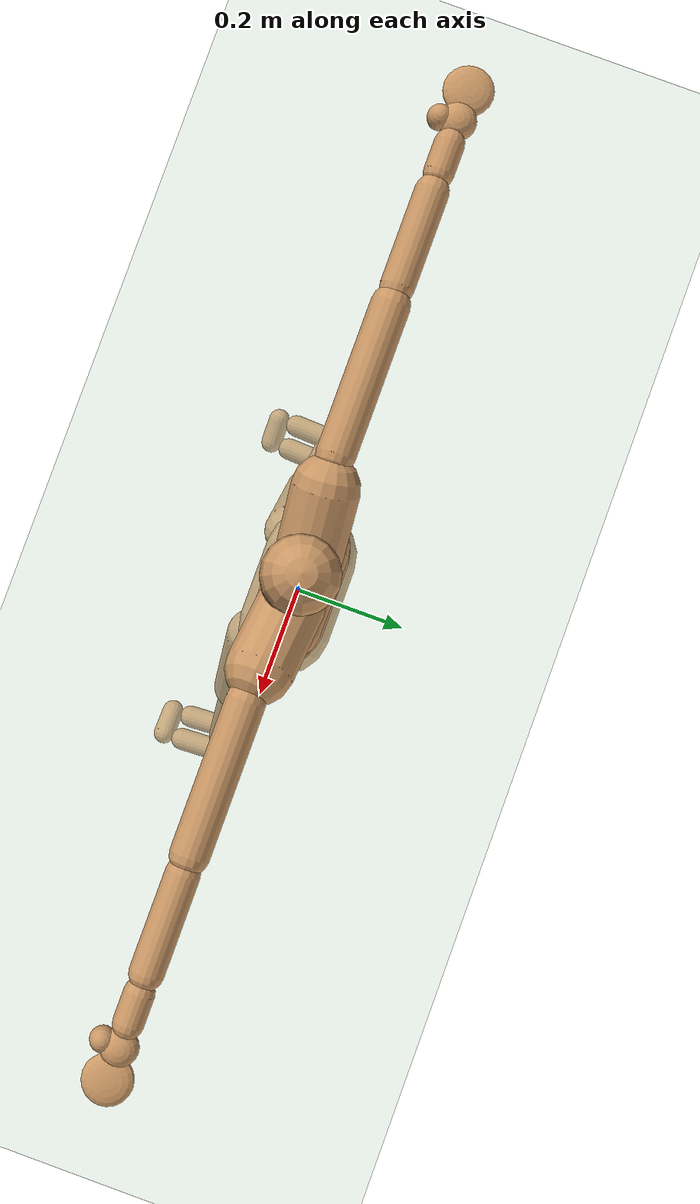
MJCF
<mujoco model="humanoid">
  <compiler angle="degree" inertiafromgeom="true" coordinate="global"/>
  <default>
    <joint damping="1" limited="true"/>
    <geom conaffinity="7" condim="1" contype="7" margin="0.001" material="geom" rgba="0.8 0.6 .4 1"/>
    <motor ctrllimited="true" ctrlrange="-1. 1."/>
  </default>
  <option integrator="RK4" iterations="50" solver="PGS" timestep="0.005"/>
  <asset>
    <texture builtin="gradient" height="100" rgb1=".4 .5 .6" rgb2="0 0 0" type="skybox" width="100"/>
    <texture builtin="flat" height="1278" mark="cross" markrgb="1 1 1" name="texgeom" random="0.01" rgb1=".8 .6 .4" rgb2=".8 .6 .4" type="cube" width="127"/>
    <texture builtin="checker" height="100" name="texplane" rgb1="0 0 0" rgb2=".8 .8 .8" type="2d" width="100"/>
    <material name="MatPlane" reflectance="0.5" shininess="1" specular="1" texrepeat="60 60" texture="texplane"/>
    <material name="geom" texture="texgeom" texuniform="true"/>
  </asset>
  <worldbody>
    <light cutoff="100" diffuse="1 1 1" dir="-0 0 -1.3" directional="true" exponent="1" pos="0 0 1.3" specular=".1 .1 .1"/>
    <geom condim="3" friction="1. .1 .1" material="MatPlane" name="floor" pos="0 0 0" rgba=".8 .9 .8 1" size="20 20 0.125" type="plane"/>
    <body name="root" user="0.0000 -0.0000 0.0000" pos="0.0000 -0.0000 0.0000">
      <geom fromto="-0.0725 0.0000 -0.0540 0.0725 0.0000 -0.0540" size="0.0850" type="capsule"/>
      <joint armature="0.0" damping="0" limited="false" name="root" pos="0.0000 -0.0000 0.0000" stiffness="0" type="free"/>
      <body name="lhipjoint" user="0.0963 -0.0494 -0.0918" pos="0.0481 -0.0247 -0.0459">
        <body name="lfemur" user="0.2274 -0.0494 -0.4521" pos="0.1618 -0.0494 -0.2720">
          <joint armature="0.005" axis="0.0000 -1.0000 0.0000" damping="1.0" limited="true" name="lfemur_z" pos="0.0963 -0.0494 -0.0918" range="-60.0000 70.0000" stiffness="0.1" type="hinge"/>
          <joint armature="0.005" axis="-0.3420 -0.0000 0.9397" damping="1.0" limited="true" name="lfemur_y" pos="0.0963 -0.0494 -0.0918" range="-70.0000 70.0000" stiffness="0.1" type="hinge"/>
          <joint armature="0.005" axis="0.9397 0.0000 0.3420" damping="1.0" limited="true" name="lfemur_x" pos="0.0963 -0.0494 -0.0918" range="-160.0000 20.0000" stiffness="0.1" type="hinge"/>
          <geom fromto="0.1031 -0.0494 -0.1106 0.2206 -0.0494 -0.4333" size="0.0520" type="capsule"/>
          <body name="ltibia" user="0.3657 -0.0494 -0.8321" pos="0.2965 -0.0494 -0.6421">
            <joint armature="0.005" axis="0.9397 0.0000 0.3420" damping="1.0" limited="true" name="ltibia_x" pos="0.2274 -0.0494 -0.4521" range="-10.0000 170.0000" stiffness="0.1" type="hinge"/>
            <geom contype="1" conaffinity="1" fromto="0.2343 -0.0494 -0.4709 0.3589 -0.0494 -0.8133" size="0.0370" type="capsule"/>
            <body name="lfoot" user="0.3731 -0.1606 -0.8523" pos="0.3694 -0.1050 -0.8422">
              <geom contype="1" conaffinity="1" fromto="0.3974 -0.0225 -0.8252 0.4054 -0.1435 -0.8472" size="0.0260" type="capsule"/>
              <geom contype="1" conaffinity="1" fromto="0.3414 -0.0225 -0.8512 0.3494 -0.1435 -0.8732" size="0.0260" type="capsule"/>
              <joint armature="0.005" axis="-0.3420 -0.0000 0.9397" damping="1.0" limited="true" name="lfoot_z" pos="0.3657 -0.0494 -0.8321" range="-70.0000 20.0000" stiffness="0.1" type="hinge"/>
              <joint armature="0.005" axis="0.9397 0.0000 0.3420" damping="1.0" limited="true" name="lfoot_x" pos="0.3657 -0.0494 -0.8321" range="-45.0000 90.0000" stiffness="0.1" type="hinge"/>
              <body name="ltoes" user="0.3731 -0.2178 -0.8523" pos="0.3731 -0.1892 -0.8523">
                <geom contype="1" conaffinity="1" fromto="0.4073 -0.1892 -0.8540 0.3509 -0.1892 -0.8746" size="0.0250" type="capsule"/>
                <joint armature="0.005" axis="0.9397 0.0000 0.3420" damping="1.0" limited="true" name="ltoes_x" pos="0.3731 -0.1606 -0.8523" range="-90.0000 20.0000" stiffness="0.1" type="hinge"/>
              </body>
            </body>
          </body>
        </body>
      </body>
      <body name="rhipjoint" user="-0.0963 -0.0494 -0.0918" pos="-0.0481 -0.0247 -0.0459">
        <body name="rfemur" user="-0.2274 -0.0494 -0.4521" pos="-0.1618 -0.0494 -0.2720">
          <joint armature="0.005" axis="0.0000 -1.0000 -0.0000" damping="1.0" limited="true" name="rfemur_z" pos="-0.0963 -0.0494 -0.0918" range="-70.0000 60.0000" stiffness="0.1" type="hinge"/>
          <joint armature="0.005" axis="0.3420 -0.0000 0.9397" damping="1.0" limited="true" name="rfemur_y" pos="-0.0963 -0.0494 -0.0918" range="-70.0000 70.0000" stiffness="0.1" type="hinge"/>
          <joint armature="0.005" axis="0.9397 0.0000 -0.3420" damping="1.0" limited="true" name="rfemur_x" pos="-0.0963 -0.0494 -0.0918" range="-160.0000 20.0000" stiffness="0.1" type="hinge"/>
          <geom fromto="-0.1031 -0.0494 -0.1106 -0.2206 -0.0494 -0.4333" size="0.0520" type="capsule"/>
          <body name="rtibia" user="-0.3657 -0.0494 -0.8321" pos="-0.2965 -0.0494 -0.6421">
            <joint armature="0.005" axis="0.9397 0.0000 -0.3420" damping="1.0" limited="true" name="rtibia_x" pos="-0.2274 -0.0494 -0.4521" range="-10.0000 170.0000" stiffness="0.1" type="hinge"/>
            <geom contype="2" conaffinity="2" fromto="-0.2343 -0.0494 -0.4709 -0.3589 -0.0494 -0.8133" size="0.0370" type="capsule"/>
            <body name="rfoot" user="-0.3731 -0.1606 -0.8523" pos="-0.3694 -0.1050 -0.8422">
              <geom contype="2" conaffinity="2" fromto="-0.3974 -0.0225 -0.8252 -0.4054 -0.1435 -0.8472" size="0.0260" type="capsule"/>
              <geom contype="2" conaffinity="2" fromto="-0.3414 -0.0225 -0.8512 -0.3494 -0.1435 -0.8732" size="0.0260" type="capsule"/>
              <joint armature="0.005" axis="0.3420 -0.0000 0.9397" damping="1.0" limited="true" name="rfoot_z" pos="-0.3657 -0.0494 -0.8321" range="-20.0000 70.0000" stiffness="0.1" type="hinge"/>
              <joint armature="0.005" axis="0.9397 -0.0000 -0.3420" damping="1.0" limited="true" name="rfoot_x" pos="-0.3657 -0.0494 -0.8321" range="-45.0000 90.0000" stiffness="0.1" type="hinge"/>
              <body name="rtoes" user="-0.3731 -0.2178 -0.8523" pos="-0.3731 -0.1892 -0.8523">
                <geom contype="2" conaffinity="2" fromto="-0.4073 -0.1892 -0.8540 -0.3509 -0.1892 -0.8746" size="0.0250" type="capsule"/>
                <joint armature="0.005" axis="0.9397 -0.0000 -0.3420" damping="1.0" limited="true" name="rtoes_x" pos="-0.3731 -0.1606 -0.8523" range="-90.0000 20.0000" stiffness="0.1" type="hinge"/>
              </body>
            </body>
          </body>
        </body>
      </body>
      <body name="lowerback" user="0.0006 0.0081 0.1132" pos="0.0003 0.0040 0.0566">
        <geom fromto="-0.0697 0.0040 0.0566 0.0703 0.0040 0.0566" size="0.0550" type="capsule"/>
        <joint armature="0.005" axis="0.0000 -1.0000 0.0000" damping="1.0" limited="true" name="lowerback_z" pos="0.0000 -0.0000 0.0000" range="-30.0000 30.0000" stiffness="0.1" type="hinge"/>
        <joint armature="0.005" axis="0.0000 -0.0000 1.0000" damping="1.0" limited="true" name="lowerback_y" pos="0.0000 -0.0000 0.0000" range="-30.0000 30.0000" stiffness="0.1" type="hinge"/>
        <joint armature="0.005" axis="1.0000 0.0000 0.0000" damping="1.0" limited="true" name="lowerback_x" pos="0.0000 -0.0000 0.0000" range="-20.0000 45.0000" stiffness="0.1" type="hinge"/>
        <body name="upperback" user="0.0011 0.0071 0.2268" pos="0.0009 0.0076 0.1700">
          <geom fromto="-0.0642 0.0076 0.1680 0.0659 0.0076 0.1680" size="0.0580" type="capsule"/>
          <joint armature="0.005" axis="0.0000 -1.0000 0.0000" damping="1.0" limited="true" name="upperback_z" pos="0.0006 0.0081 0.1132" range="-30.0000 30.0000" stiffness="0.1" type="hinge"/>
          <joint armature="0.005" axis="0.0000 -0.0000 1.0000" damping="1.0" limited="true" name="upperback_y" pos="0.0006 0.0081 0.1132" range="-30.0000 30.0000" stiffness="0.1" type="hinge"/>
          <joint armature="0.005" axis="1.0000 0.0000 0.0000" damping="1.0" limited="true" name="upperback_x" pos="0.0006 0.0081 0.1132" range="-20.0000 45.0000" stiffness="0.1" type="hinge"/>
          <body name="thorax" user="0.0010 0.0024 0.3407" pos="0.0011 0.0047 0.2838">
            <geom fromto="-0.0665 0.0047 0.2818 0.0686 0.0047 0.2818" size="0.0550" type="capsule"/>
            <joint armature="0.005" axis="0.0000 -1.0000 0.0000" damping="1.0" limited="true" name="thorax_z" pos="0.0011 0.0071 0.2268" range="-30.0000 30.0000" stiffness="0.1" type="hinge"/>
            <joint armature="0.005" axis="0.0000 -0.0000 1.0000" damping="1.0" limited="true" name="thorax_y" pos="0.0011 0.0071 0.2268" range="-30.0000 30.0000" stiffness="0.1" type="hinge"/>
            <joint armature="0.005" axis="1.0000 0.0000 0.0000" damping="1.0" limited="true" name="thorax_x" pos="0.0011 0.0071 0.2268" range="-20.0000 45.0000" stiffness="0.1" type="hinge"/>
            <body name="lowerneck" user="-0.0023 -0.0083 0.4312" pos="-0.0006 -0.0030 0.3860">
              <joint armature="0.005" axis="0.0000 -1.0000 0.0000" damping="1.0" limited="true" name="lowerneck_z" pos="0.0010 0.0024 0.3407" range="-30.0000 30.0000" stiffness="0.1" type="hinge"/>
              <joint armature="0.005" axis="0.0000 -0.0000 1.0000" damping="1.0" limited="true" name="lowerneck_y" pos="0.0010 0.0024 0.3407" range="-30.0000 30.0000" stiffness="0.1" type="hinge"/>
              <joint armature="0.005" axis="1.0000 0.0000 0.0000" damping="1.0" limited="true" name="lowerneck_x" pos="0.0010 0.0024 0.3407" range="-20.0000 45.0000" stiffness="0.1" type="hinge"/>
              <geom contype="1" conaffinity="1" fromto="0.0003 0.0001 0.3606 -0.0015 -0.0059 0.4114" size="0.0570" type="capsule"/>
              <body name="upperneck" user="-0.0013 -0.0038 0.5212" pos="-0.0018 -0.0060 0.4762">
                <joint armature="0.005" axis="0.0000 -1.0000 0.0000" damping="1.0" limited="true" name="upperneck_z" pos="-0.0023 -0.0083 0.4312" range="-30.0000 30.0000" stiffness="0.1" type="hinge"/>
                <joint armature="0.005" axis="0.0000 -0.0000 1.0000" damping="1.0" limited="true" name="upperneck_y" pos="-0.0023 -0.0083 0.4312" range="-30.0000 30.0000" stiffness="0.1" type="hinge"/>
                <joint armature="0.005" axis="1.0000 0.0000 0.0000" damping="1.0" limited="true" name="upperneck_x" pos="-0.0023 -0.0083 0.4312" range="-20.0000 45.0000" stiffness="0.1" type="hinge"/>
                <geom fromto="-0.0020 -0.0073 0.4512 -0.0015 -0.0048 0.5012" size="0.0300" type="capsule"/>
                <body name="head" user="-0.0006 -0.0008 0.6176" pos="-0.0009 -0.0023 0.5694">
                  <joint armature="0.005" axis="0.0000 -1.0000 0.0000" damping="1.0" limited="true" name="head_z" pos="-0.0013 -0.0038 0.5212" range="-30.0000 30.0000" stiffness="0.1" type="hinge"/>
                  <joint armature="0.005" axis="0.0000 -0.0000 1.0000" damping="1.0" limited="true" name="head_y" pos="-0.0013 -0.0038 0.5212" range="-30.0000 30.0000" stiffness="0.1" type="hinge"/>
                  <joint armature="0.005" axis="1.0000 0.0000 0.0000" damping="1.0" limited="true" name="head_x" pos="-0.0013 -0.0038 0.5212" range="-20.0000 45.0000" stiffness="0.1" type="hinge"/>
                  <geom fromto="-0.0011 -0.0031 0.5412 -0.0007 -0.0014 0.5976" size="0.0570" type="capsule"/>
                </body>
              </body>
            </body>
            <body name="lclavicle" user="0.1790 -0.0149 0.4121" pos="0.0900 -0.0063 0.3764">
              <joint armature="0.005" axis="0.0000 -1.0000 0.0000" damping="1.0" limited="true" name="lclavicle_z" pos="0.0010 0.0024 0.3407" range="0.0000 20.0000" stiffness="0.1" type="hinge"/>
              <joint armature="0.005" axis="0.0000 -0.0000 1.0000" damping="1.0" limited="true" name="lclavicle_y" pos="0.0010 0.0024 0.3407" range="-20.0000 10.0000" stiffness="0.1" type="hinge"/>
              <geom contype="2" conaffinity="2" fromto="0.0334 -0.0007 0.3537 0.1466 -0.0118 0.3991" size="0.0540" type="capsule"/>
              <body name="lhumerus" user="0.4599 -0.0149 0.4121" pos="0.3195 -0.0149 0.4121">
                <joint armature="0.005" axis="-0.0000 0.8660 -0.5000" damping="1.0" limited="true" name="lhumerus_z" pos="0.1790 -0.0149 0.4121" range="-90.0000 90.0000" stiffness="0.1" type="hinge"/>
                <joint armature="0.005" axis="-1.0000 -0.0000 -0.0000" damping="1.0" limited="true" name="lhumerus_y" pos="0.1790 -0.0149 0.4121" range="-90.0000 90.0000" stiffness="0.1" type="hinge"/>
                <joint armature="0.005" axis="0.0000 -0.5000 -0.8660" damping="1.0" limited="true" name="lhumerus_x" pos="0.1790 -0.0149 0.4121" range="-60.0000 90.0000" stiffness="0.1" type="hinge"/>
                <geom fromto="0.1965 -0.0149 0.4121 0.4424 -0.0149 0.4121" size="0.0310" type="capsule"/>
                <body name="lradius" user="0.6374 -0.0149 0.4121" pos="0.5486 -0.0149 0.4121">
                  <joint armature="0.005" axis="0.0000 -0.5000 -0.8660" damping="1.0" limited="true" name="lradius_x" pos="0.4599 -0.0149 0.4121" range="-10.0000 170.0000" stiffness="0.1" type="hinge"/>
                  <geom fromto="0.4699 -0.0149 0.4121 0.6274 -0.0149 0.4121" size="0.0270" type="capsule"/>
                  <body name="lwrist" user="0.7261 -0.0149 0.4121" pos="0.6817 -0.0149 0.4121">
                    <joint armature="0.005" axis="-1.0000 -0.0000 0.0000" damping="1.0" limited="true" name="lwrist_y" pos="0.6374 -0.0149 0.4121" range="-180.0000 0.0000" stiffness="0.1" type="hinge"/>
                    <geom fromto="0.6574 -0.0149 0.4121 0.7061 -0.0149 0.4121" size="0.0240" type="capsule"/>
                    <body name="lhand" user="0.7596 -0.0149 0.4121" pos="0.7429 -0.0149 0.4121">
                      <geom contype="1" conaffinity="1" pos="0.7429 -0.0149 0.4121" size="0.0300 0.0300 0.0200" quat="1.0000 -0.0000 -0.0000 0.0000" type="ellipsoid"/>
                      <joint armature="0.005" axis="0.0000 -0.0000 1.0000" damping="1.0" limited="true" name="lhand_z" pos="0.7261 -0.0149 0.4121" range="-45.0000 45.0000" stiffness="0.1" type="hinge"/>
                      <joint armature="0.005" axis="0.0000 1.0000 0.0000" damping="1.0" limited="true" name="lhand_x" pos="0.7261 -0.0149 0.4121" range="-90.0000 90.0000" stiffness="0.1" type="hinge"/>
                      <body name="lfingers" user="0.7866 -0.0149 0.4121" pos="0.7731 -0.0149 0.4121">
                        <geom contype="2" conaffinity="2" pos="0.7931 -0.0149 0.4121" size="0.0400 0.0400 0.0120" quat="1.0000 -0.0000 -0.0000 0.0000" type="ellipsoid"/>
                        <joint armature="0.005" axis="0.0000 1.0000 0.0000" damping="1.0" limited="true" name="lfingers_x" pos="0.7596 -0.0149 0.4121" range="0.0000 90.0000" stiffness="0.1" type="hinge"/>
                      </body>
                    </body>
                    <body name="lthumb" user="0.7535 -0.0423 0.4121" pos="0.7398 -0.0286 0.4121">
                      <geom contype="4" conaffinity="4" pos="0.7398 -0.0426 0.4121" size="0.0200 0.0200 0.0200" quat="1.0000 -0.0000 -0.0000 0.0000" type="ellipsoid"/>
                      <joint armature="0.005" axis="-0.0000 -0.0000 1.0000" damping="1.0" limited="true" name="lthumb_z" pos="0.7261 -0.0149 0.4121" range="-45.0000 45.0000" stiffness="0.1" type="hinge"/>
                      <joint armature="0.005" axis="0.7071 0.7071 0.0000" damping="1.0" limited="true" name="lthumb_x" pos="0.7261 -0.0149 0.4121" range="-45.0000 45.0000" stiffness="0.1" type="hinge"/>
                    </body>
                  </body>
                </body>
              </body>
            </body>
            <body name="rclavicle" user="-0.1790 -0.0149 0.4121" pos="-0.0900 -0.0063 0.3764">
              <joint armature="0.005" axis="0.0000 -1.0000 0.0000" damping="1.0" limited="true" name="rclavicle_z" pos="-0.0010 0.0024 0.3407" range="-20.0000 0.0000" stiffness="0.1" type="hinge"/>
              <joint armature="0.005" axis="0.0000 -0.0000 1.0000" damping="1.0" limited="true" name="rclavicle_y" pos="-0.0010 0.0024 0.3407" range="-10.0000 20.0000" stiffness="0.1" type="hinge"/>
              <geom contype="4" conaffinity="4" fromto="-0.0334 -0.0007 0.3537 -0.1466 -0.0118 0.3991" size="0.0540" type="capsule"/>
              <body name="rhumerus" user="-0.4599 -0.0149 0.4121" pos="-0.3195 -0.0149 0.4121">
                <joint armature="0.005" axis="0.0000 0.8660 -0.5000" damping="1.0" limited="true" name="rhumerus_z" pos="-0.1790 -0.0149 0.4121" range="-90.0000 90.0000" stiffness="0.1" type="hinge"/>
                <joint armature="0.005" axis="1.0000 -0.0000 -0.0000" damping="1.0" limited="true" name="rhumerus_y" pos="-0.1790 -0.0149 0.4121" range="-90.0000 90.0000" stiffness="0.1" type="hinge"/>
                <joint armature="0.005" axis="0.0000 0.5000 0.8660" damping="1.0" limited="true" name="rhumerus_x" pos="-0.1790 -0.0149 0.4121" range="-90.0000 60.0000" stiffness="0.1" type="hinge"/>
                <geom fromto="-0.1965 -0.0149 0.4121 -0.4424 -0.0149 0.4121" size="0.0310" type="capsule"/>
                <body name="rradius" user="-0.6374 -0.0149 0.4121" pos="-0.5486 -0.0149 0.4121">
                  <joint armature="0.005" axis="0.0000 0.5000 0.8660" damping="1.0" limited="true" name="rradius_x" pos="-0.4599 -0.0149 0.4121" range="-10.0000 170.0000" stiffness="0.1" type="hinge"/>
                  <geom fromto="-0.4699 -0.0149 0.4121 -0.6274 -0.0149 0.4121" size="0.0270" type="capsule"/>
                  <body name="rwrist" user="-0.7261 -0.0149 0.4121" pos="-0.6817 -0.0149 0.4121">
                    <joint armature="0.005" axis="1.0000 -0.0000 0.0000" damping="1.0" limited="true" name="rwrist_y" pos="-0.6374 -0.0149 0.4121" range="-180.0000 0.0000" stiffness="0.1" type="hinge"/>
                    <geom fromto="-0.6574 -0.0149 0.4121 -0.7061 -0.0149 0.4121" size="0.0240" type="capsule"/>
                    <body name="rhand" user="-0.7596 -0.0149 0.4121" pos="-0.7429 -0.0149 0.4121">
                      <geom contype="1" conaffinity="1" pos="-0.7429 -0.0149 0.4121" size="0.0300 0.0300 0.0200" quat="1.0000 -0.0000 0.0000 -0.0000" type="ellipsoid"/>
                      <joint armature="0.005" axis="-0.0000 -0.0000 1.0000" damping="1.0" limited="true" name="rhand_z" pos="-0.7261 -0.0149 0.4121" range="-45.0000 45.0000" stiffness="0.1" type="hinge"/>
                      <joint armature="0.005" axis="0.0000 -1.0000 -0.0000" damping="1.0" limited="true" name="rhand_x" pos="-0.7261 -0.0149 0.4121" range="-90.0000 90.0000" stiffness="0.1" type="hinge"/>
                      <body name="rfingers" user="-0.7866 -0.0149 0.4121" pos="-0.7731 -0.0149 0.4121">
                        <geom contype="2" conaffinity="2" pos="-0.7931 -0.0149 0.4121" size="0.0400 0.0400 0.0120" quat="1.0000 -0.0000 0.0000 -0.0000" type="ellipsoid"/>
                        <joint armature="0.005" axis="0.0000 -1.0000 -0.0000" damping="1.0" limited="true" name="rfingers_x" pos="-0.7596 -0.0149 0.4121" range="0.0000 90.0000" stiffness="0.1" type="hinge"/>
                      </body>
                    </body>
                    <body name="rthumb" user="-0.7535 -0.0423 0.4121" pos="-0.7398 -0.0286 0.4121">
                      <geom contype="4" conaffinity="4" pos="-0.7398 -0.0426 0.4121" size="0.0200 0.0200 0.0200" quat="1.0000 -0.0000 0.0000 -0.0000" type="ellipsoid"/>
                      <joint armature="0.005" axis="0.0000 -0.0000 1.0000" damping="1.0" limited="true" name="rthumb_z" pos="-0.7261 -0.0149 0.4121" range="-45.0000 45.0000" stiffness="0.1" type="hinge"/>
                      <joint armature="0.005" axis="0.7071 -0.7071 -0.0000" damping="1.0" limited="true" name="rthumb_x" pos="-0.7261 -0.0149 0.4121" range="-45.0000 45.0000" stiffness="0.1" type="hinge"/>
                    </body>
                  </body>
                </body>
              </body>
            </body>
          </body>
        </body>
      </body>
    </body>
  </worldbody>
  <actuator>
    <motor gear="300" joint="lfemur_x" name="lfemur_x"/>
    <motor gear="100" joint="lfemur_y" name="lfemur_y"/>
    <motor gear="100" joint="lfemur_z" name="lfemur_z"/>
    <motor gear="300" joint="ltibia_x" name="ltibia_x"/>
    <motor gear="100" joint="lfoot_x" name="lfoot_x"/>
    <motor gear="30" joint="lfoot_z" name="lfoot_z"/>
    <motor gear="20" joint="ltoes_x" name="ltoes_x"/>
    <motor gear="300" joint="rfemur_x" name="rfemur_x"/>
    <motor gear="100" joint="rfemur_y" name="rfemur_y"/>
    <motor gear="100" joint="rfemur_z" name="rfemur_z"/>
    <motor gear="300" joint="rtibia_x" name="rtibia_x"/>
    <motor gear="100" joint="rfoot_x" name="rfoot_x"/>
    <motor gear="30" joint="rfoot_z" name="rfoot_z"/>
    <motor gear="20" joint="rtoes_x" name="rtoes_x"/>
    <motor gear="300" joint="lowerback_x" name="lowerback_x"/>
    <motor gear="100" joint="lowerback_y" name="lowerback_y"/>
    <motor gear="100" joint="lowerback_z" name="lowerback_z"/>
    <motor gear="300" joint="upperback_x" name="upperback_x"/>
    <motor gear="100" joint="upperback_y" name="upperback_y"/>
    <motor gear="100" joint="upperback_z" name="upperback_z"/>
    <motor gear="100" joint="thorax_x" name="thorax_x"/>
    <motor gear="100" joint="thorax_y" name="thorax_y"/>
    <motor gear="100" joint="thorax_z" name="thorax_z"/>
    <motor gear="50" joint="lowerneck_x" name="lowerneck_x"/>
    <motor gear="50" joint="lowerneck_y" name="lowerneck_y"/>
    <motor gear="50" joint="lowerneck_z" name="lowerneck_z"/>
    <motor gear="50" joint="upperneck_x" name="upperneck_x"/>
    <motor gear="50" joint="upperneck_y" name="upperneck_y"/>
    <motor gear="50" joint="upperneck_z" name="upperneck_z"/>
    <motor gear="50" joint="head_x" name="head_x"/>
    <motor gear="50" joint="head_y" name="head_y"/>
    <motor gear="50" joint="head_z" name="head_z"/>
    <motor gear="100" joint="lclavicle_y" name="lclavicle_y"/>
    <motor gear="100" joint="lclavicle_z" name="lclavicle_z"/>
    <motor gear="50" joint="lhumerus_x" name="lhumerus_x"/>
    <motor gear="50" joint="lhumerus_y" name="lhumerus_y"/>
    <motor gear="50" joint="lhumerus_z" name="lhumerus_z"/>
    <motor gear="20" joint="lradius_x" name="lradius_x"/>
    <motor gear="20" joint="lwrist_y" name="lwrist_y"/>
    <motor gear="20" joint="lhand_x" name="lhand_x"/>
    <motor gear="20" joint="lhand_z" name="lhand_z"/>
    <motor gear="20" joint="lfingers_x" name="lfingers_x"/>
    <motor gear="20" joint="lthumb_x" name="lthumb_x"/>
    <motor gear="20" joint="lthumb_z" name="lthumb_z"/>
    <motor gear="100" joint="rclavicle_y" name="rclavicle_y"/>
    <motor gear="100" joint="rclavicle_z" name="rclavicle_z"/>
    <motor gear="50" joint="rhumerus_x" name="rhumerus_x"/>
    <motor gear="50" joint="rhumerus_y" name="rhumerus_y"/>
    <motor gear="50" joint="rhumerus_z" name="rhumerus_z"/>
    <motor gear="20" joint="rradius_x" name="rradius_x"/>
    <motor gear="20" joint="rwrist_y" name="rwrist_y"/>
    <motor gear="20" joint="rhand_x" name="rhand_x"/>
    <motor gear="20" joint="rhand_z" name="rhand_z"/>
    <motor gear="20" joint="rfingers_x" name="rfingers_x"/>
    <motor gear="20" joint="rthumb_x" name="rthumb_x"/>
    <motor gear="20" joint="rthumb_z" name="rthumb_z"/>
  </actuator>
</mujoco>
